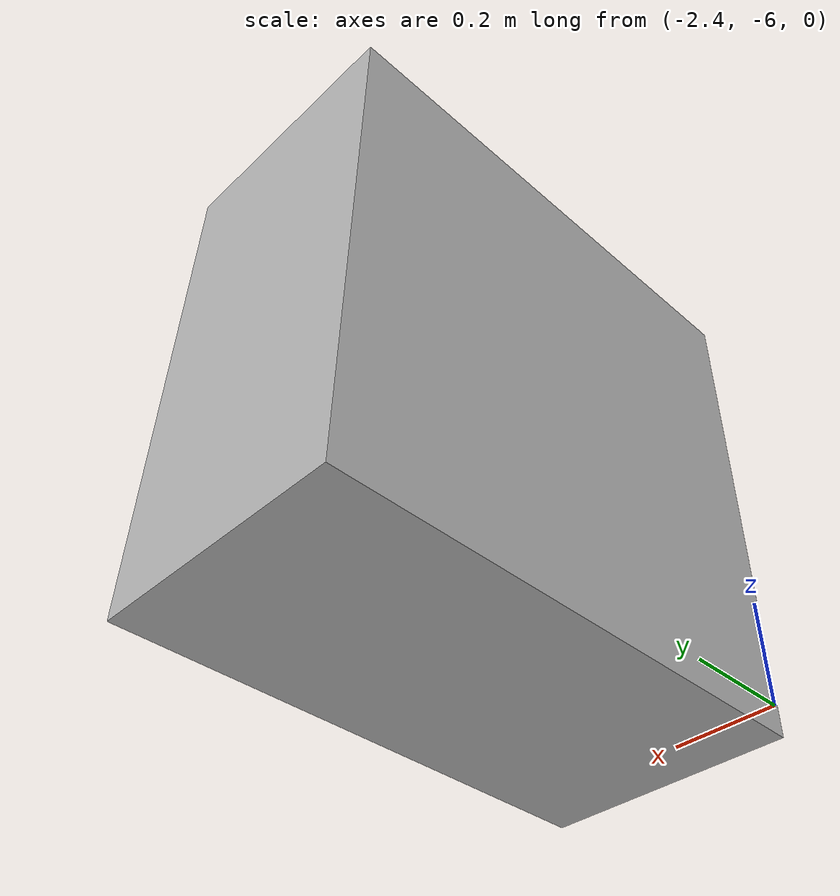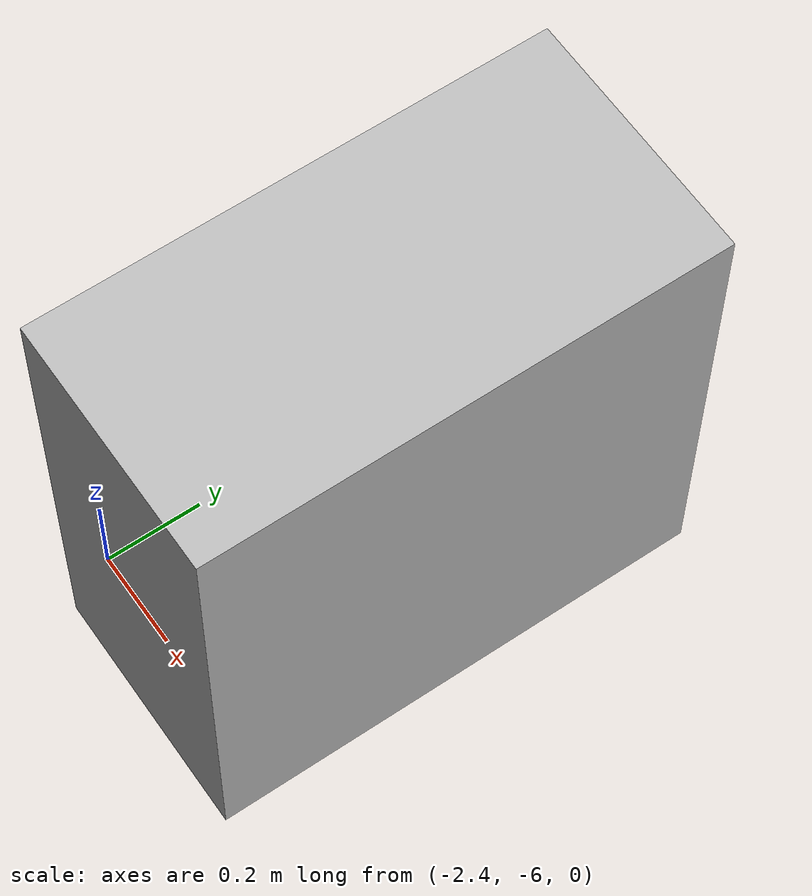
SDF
<?xml version="1.0"?>
<sdf version="1.8">
  <model name="gate3">
    <pose>-2.1 -5.6 0.5 0 0 0</pose>
    <static>true</static>

    <link name="link">
      <pose>0 0 0 0 0 0</pose>

      <collision name="collision">
        <geometry>
          <box>
            <size>0.5 1.0 1.0</size>
          </box>
        </geometry>
      </collision>

      <visual name="visual">
        <geometry>
          <box>
            <size>0.5 1.0 1.0</size>
          </box>
        </geometry>
      </visual>
    </link>

<plugin
  filename="gz-sim-pose-publisher-system"
  name="gz::sim::systems::PosePublisher">
  <publish_link_pose>true</publish_link_pose>
  <use_pose_vector_msg>true</use_pose_vector_msg>
  <static_publisher>true</static_publisher>
  <static_update_frequency>1</static_update_frequency>
  <allow_static_publishing>true</allow_static_publishing> <!-- THIS is the key -->
</plugin>

  </model>
</sdf>
